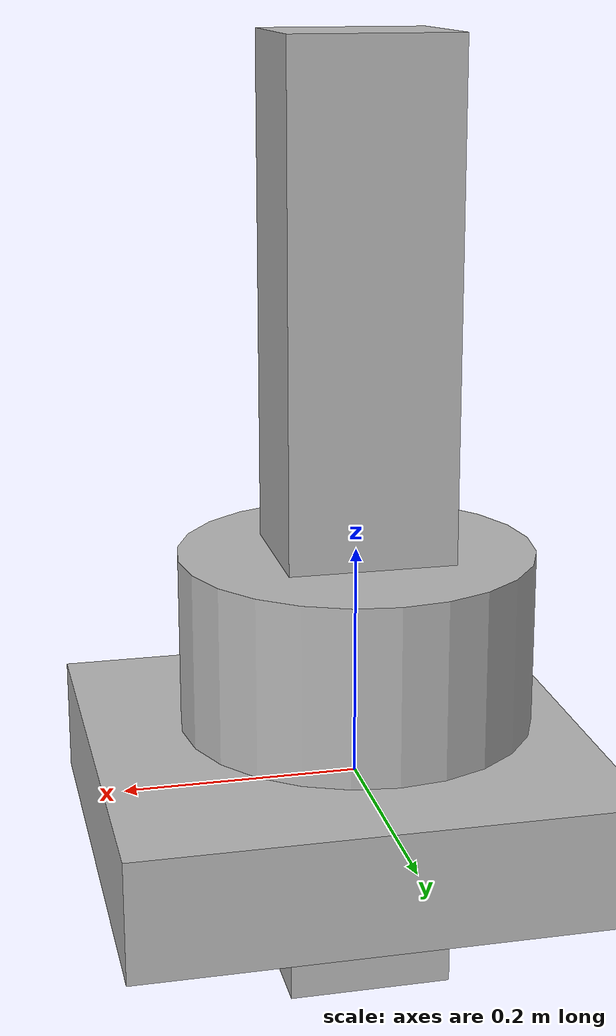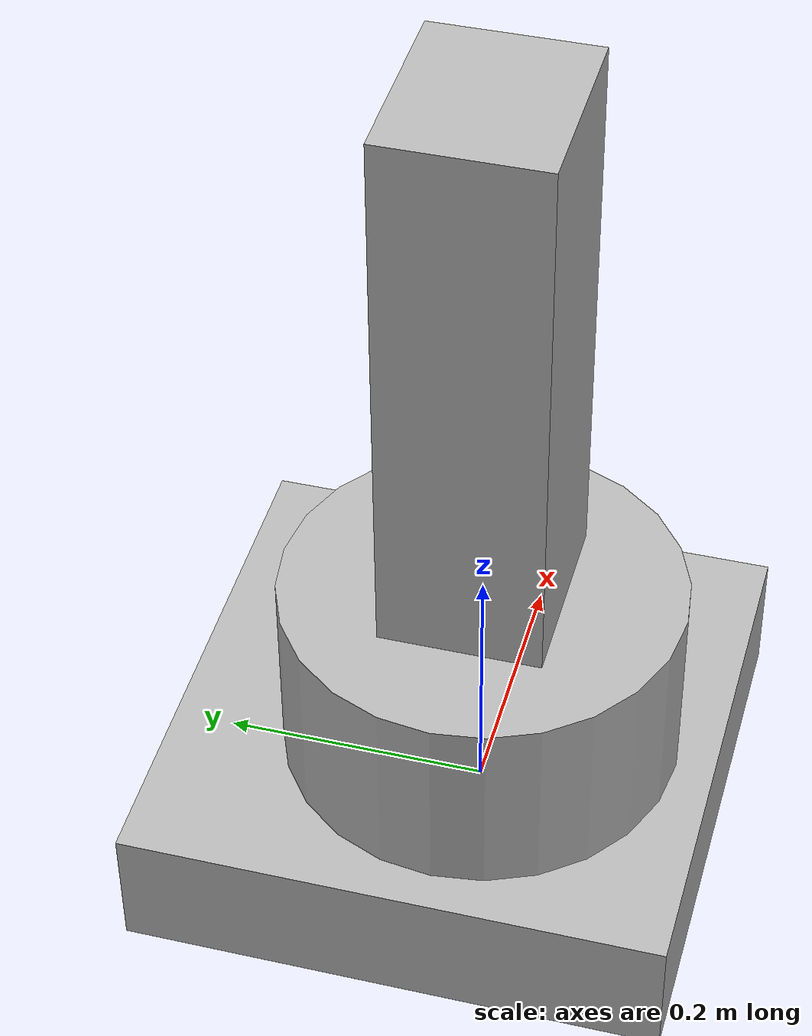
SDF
<?xml version="1.0" ?>
<!-- |    This document was autogenerated by xacro from model.sdf.xacro                | -->
<!-- |    EDITING THIS FILE BY HAND IS NOT RECOMMENDED                                 | -->
<sdf version="1.6" xmlns:xacro="http://www.ros.org/wiki/xacro">
  <model name="scara_arm_robot">
    <pose>0 0 0 0 0 0</pose>
    <static>true</static>
    <link name="table_link">
      <pose>0 0 0 0 0 0</pose>
      <inertial>
        <mass>100</mass>
        <inertia>
          <!-- inertias are tricky to compute -->
          <!-- http://gazebosim.org/tutorials?tut=inertia&cat=build_robot -->
          <ixx>0.083</ixx>
          <!-- for a box: ixx = 0.083 * mass * (y*y + z*z) -->
          <ixy>0.0</ixy>
          <!-- for a box: ixy = 0 -->
          <ixz>0.0</ixz>
          <!-- for a box: ixz = 0 -->
          <iyy>0.083</iyy>
          <!-- for a box: iyy = 0.083 * mass * (x*x + z*z) -->
          <iyz>0.0</iyz>
          <!-- for a box: iyz = 0 -->
          <izz>0.083</izz>
          <!-- for a box: izz = 0.083 * mass * (x*x + y*y) -->
        </inertia>
      </inertial>
      <collision name="collision">
        <geometry>
          <box>
            <size>5 5 0.1</size>
          </box>
        </geometry>
      </collision>
      <visual name="visual">
        <geometry>
          <box>
            <size>5 5 0.1</size>
          </box>
        </geometry>
      </visual>
    </link>
    <link name="base_link">
      <pose>0 0 0.1 0 0 0</pose>
      <inertial>
        <mass>5</mass>
        <inertia>
          <!-- inertias are tricky to compute -->
          <!-- http://gazebosim.org/tutorials?tut=inertia&cat=build_robot -->
          <ixx>0.083</ixx>
          <!-- for a box: ixx = 0.083 * mass * (y*y + z*z) -->
          <ixy>0.0</ixy>
          <!-- for a box: ixy = 0 -->
          <ixz>0.0</ixz>
          <!-- for a box: ixz = 0 -->
          <iyy>0.083</iyy>
          <!-- for a box: iyy = 0.083 * mass * (x*x + z*z) -->
          <iyz>0.0</iyz>
          <!-- for a box: iyz = 0 -->
          <izz>0.083</izz>
          <!-- for a box: izz = 0.083 * mass * (x*x + y*y) -->
        </inertia>
      </inertial>
      <collision name="collision">
        <geometry>
          <cylinder>
            <radius>0.13</radius>
            <length>0.12</length>
          </cylinder>
        </geometry>
      </collision>
      <visual name="visual">
        <geometry>
          <cylinder>
            <radius>0.15</radius>
            <length>0.2</length>
          </cylinder>
        </geometry>
      </visual>
    </link>
    <link name="body_link">
      <pose>0 0 0.22 0 0 0</pose>
      <inertial>
        <mass>10</mass>
        <inertia>
          <!-- inertias are tricky to compute -->
          <!-- http://gazebosim.org/tutorials?tut=inertia&cat=build_robot -->
          <ixx>0.083</ixx>
          <!-- for a box: ixx = 0.083 * mass * (y*y + z*z) -->
          <ixy>0.0</ixy>
          <!-- for a box: ixy = 0 -->
          <ixz>0.0</ixz>
          <!-- for a box: ixz = 0 -->
          <iyy>0.083</iyy>
          <!-- for a box: iyy = 0.083 * mass * (x*x + z*z) -->
          <iyz>0.0</iyz>
          <!-- for a box: iyz = 0 -->
          <izz>0.083</izz>
          <!-- for a box: izz = 0.083 * mass * (x*x + y*y) -->
        </inertia>
      </inertial>
      <collision name="collision">
        <geometry>
          <box>
            <size>0.14 0.12 0.8</size>
          </box>
        </geometry>
      </collision>
      <visual name="visual">
        <geometry>
          <box>
            <size>0.14 0.12 0.8</size>
          </box>
        </geometry>
      </visual>
    </link>
  </model>
</sdf>
